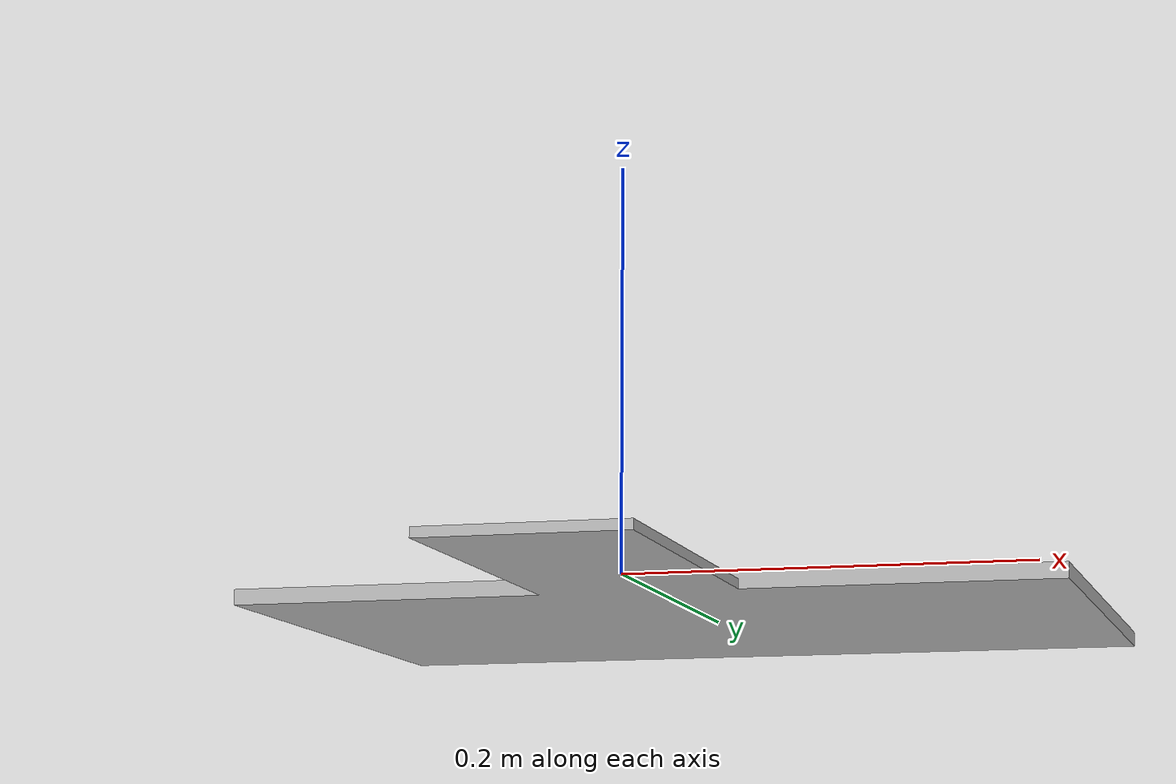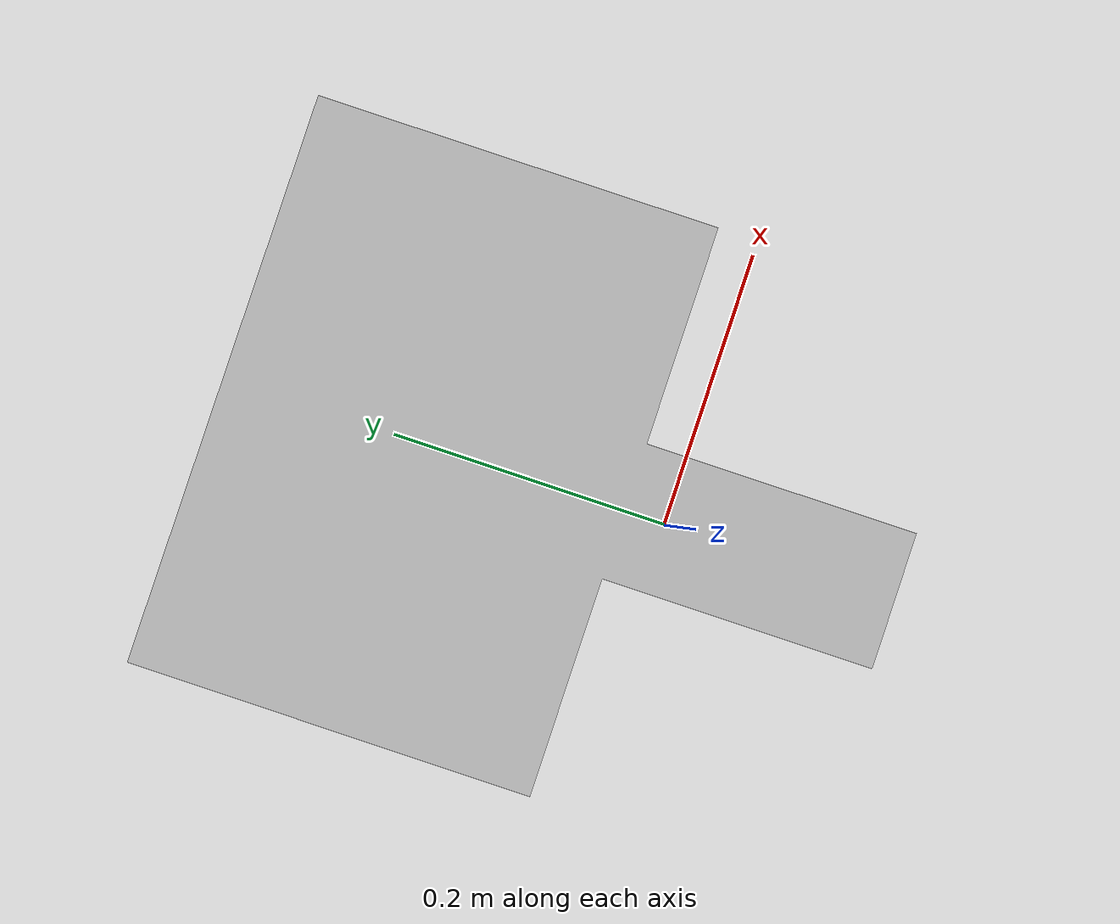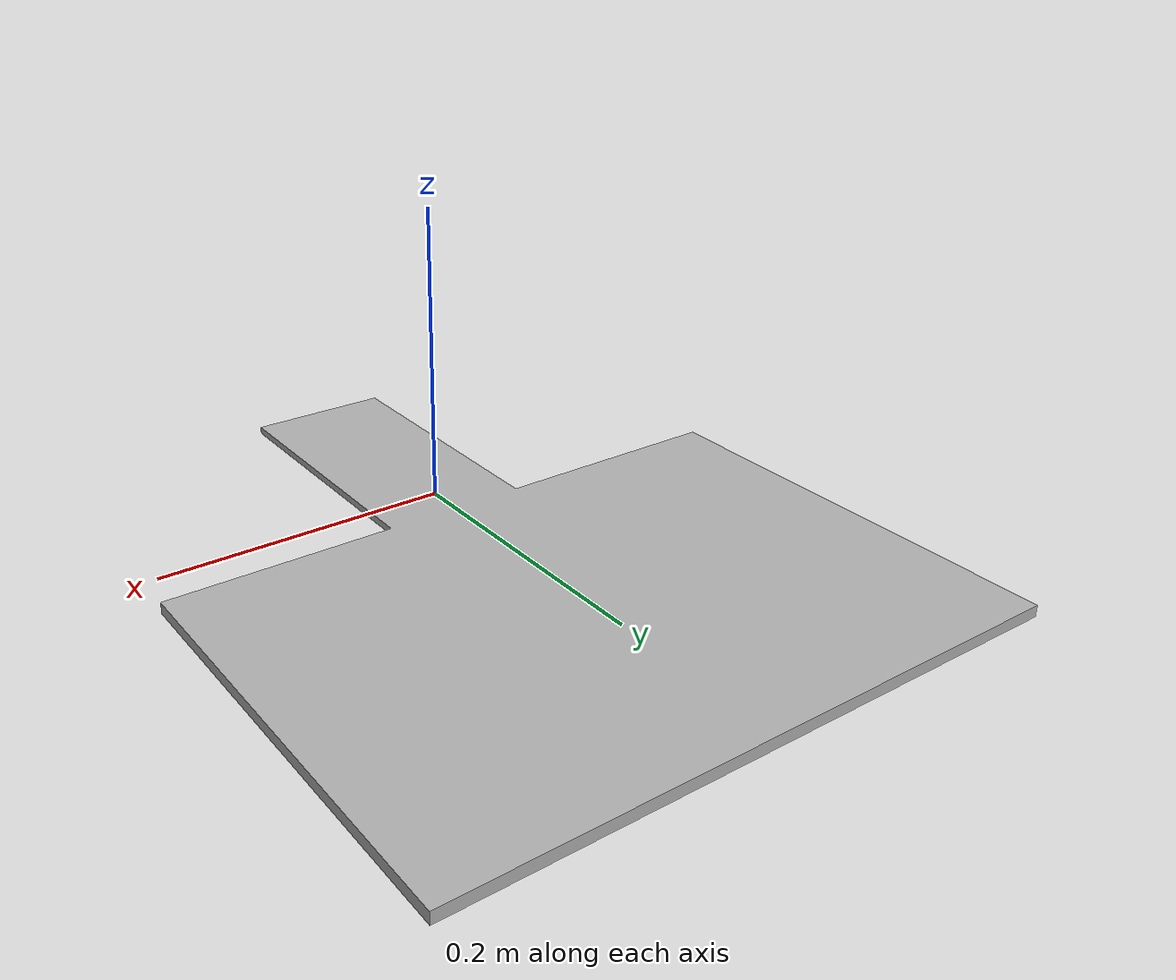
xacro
<?xml version="1.0" ?>
<robot name="(Não" xmlns:xacro="http://www.ros.org/wiki/xacro">

<xacro:include filename="$(find (Não_description)/urdf/materials.xacro" />
<xacro:include filename="$(find (Não_description)/urdf/(Não.trans" />
<xacro:include filename="$(find (Não_description)/urdf/(Não.gazebo" />
<link name="base_link">
  <inertial>
    <origin xyz="-2.8442283395587035e-09 0.15586629300675067 -0.001136621976377822" rpy="0 0 0"/>
    <mass value="8.618672001754616"/>
    <inertia ixx="0.104305" iyy="0.115854" izz="0.220069" ixy="0.0" iyz="-0.000266" ixz="0.0"/>
  </inertial>
  <visual>
    <origin xyz="0 0 0" rpy="0 0 0"/>
    <geometry>
      <mesh filename="package://(Não_description/meshes/base_link.stl" scale="0.001 0.001 0.001"/>
    </geometry>
    <material name="silver"/>
  </visual>
  <collision>
    <origin xyz="0 0 0" rpy="0 0 0"/>
    <geometry>
      <mesh filename="package://(Não_description/meshes/base_link.stl" scale="0.001 0.001 0.001"/>
    </geometry>
  </collision>
</link>

</robot>

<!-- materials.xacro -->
<robot name="(Não" xmlns:xacro="http://www.ros.org/wiki/xacro" >

<material name="silver">
  <color rgba="0.700 0.700 0.700 1.000"/>
</material>

</robot>

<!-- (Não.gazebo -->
<robot name="(Não" xmlns:xacro="http://www.ros.org/wiki/xacro" >

<xacro:property name="body_color" value="Gazebo/Silver" />

<gazebo>
  <plugin name="control" filename="libgazebo_ros_control.so"/>
</gazebo>
<gazebo reference="base_link">
  <material>${body_color}</material>
  <mu1>0.2</mu1>
  <mu2>0.2</mu2>
  <selfCollide>true</selfCollide>
  <gravity>true</gravity>
</gazebo>

</robot>
